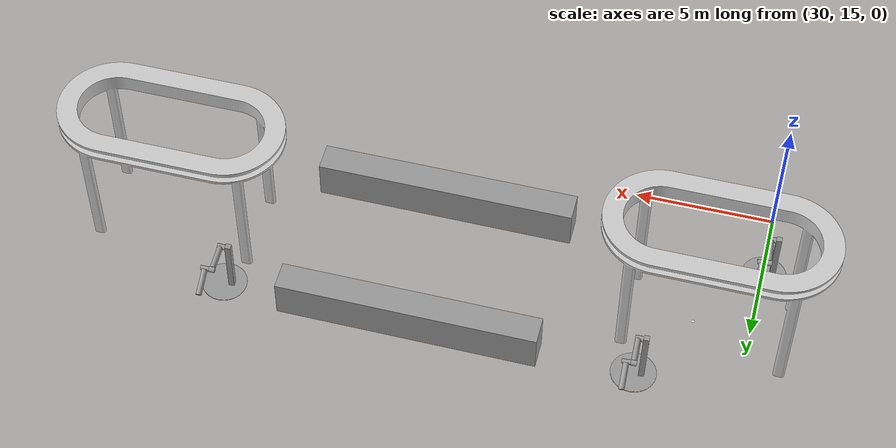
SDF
<sdf version="1.7">
 <world name="factory_ground">
  <model name="marker_2">
   <link name="marker">
    <visual name="visual">
     <geometry><box><size>0.1 0.1 1e-05</size></box></geometry>
     <material>
      <script>
       <uri>model://marker_2/materials/scripts</uri>
       <uri>model://marker_2/materials/textures</uri>
       <name>marker_material2</name>
      </script>
      <ambient>1 1 1 1</ambient>
      <diffuse>1 1 1 1</diffuse>
      <specular>0 0 0 1</specular>
      <emissive>1 1 1 0</emissive>
     </material>
    </visual>
    <collision name="collision"><geometry><box><size>0.1 0.1 1e-05</size></box></geometry></collision>
   </link>
   <link name="marker_pad">
    <pose relative_to="marker">0 0 -1e-05 0 -0 0</pose>
    <visual name="visual">
     <geometry><box><size>0.1 0.1 1e-05</size></box></geometry>
     <material>
      <lighting>1</lighting>
      <script><uri>file://media/materials/scripts/gazebo.material</uri><name>Gazebo/White</name></script>
      <ambient>0.3 0.3 0.3 1</ambient>
      <diffuse>0.7 0.7 0.7 1</diffuse>
      <specular>0.01 0.01 0.01 1</specular>
      <emissive>1 1 1 0</emissive>
     </material>
    </visual>
    <collision name="collision"><geometry><box><size>0.1 0.1 1e-05</size></box></geometry></collision>
   </link>
   <joint name="marker_JOINT_marker_pad" type="revolute">
    <parent>marker</parent>
    <child>marker_pad</child>
    <axis>
     <xyz>0 0 1</xyz>
     <limit><upper>0</upper><lower>0</lower></limit>
     <dynamics><spring_reference>0</spring_reference><spring_stiffness>0</spring_stiffness></dynamics>
    </axis>
   </joint>
   <static>1</static>
   <pose>32 20 0.046333 0 -0 0</pose>
  </model>
  <model name="cell_clone_0">
   <static>1</static>
   <pose>29.5313 18 0 0 -0 0</pose>
   <link name="link">
    <inertial>
     <mass>1</mass>
     <inertia><ixx>0.01</ixx><ixy>0</ixy><ixz>0</ixz><iyy>0.01</iyy><iyz>0</iyz><izz>0.01</izz></inertia>
    </inertial>
    <visual name="visual"><geometry><mesh><uri>model://cell/meshes/cell.dae</uri></mesh></geometry></visual>
    <collision name="collision">
     <geometry><mesh><uri>model://cell/meshes/cell.dae</uri><scale>1 1 1</scale></mesh></geometry>
     <surface>
      <friction><ode><mu>1</mu><mu2>1</mu2><fdir1>0 0 0</fdir1><slip1>0</slip1><slip2>0</slip2></ode></friction>
      <bounce><restitution_coefficient>0</restitution_coefficient><threshold>1e+06</threshold></bounce>
      <contact>
       <ode>
        <soft_cfm>0</soft_cfm>
        <soft_erp>0.2</soft_erp>
        <kp>1e+13</kp>
        <kd>1</kd>
        <max_vel>0.01</max_vel>
        <min_depth>0.001</min_depth>
       </ode>
      </contact>
     </surface>
    </collision>
   </link>
   <static>1</static>
  </model>
  <model name="cell_clone_0_clone">
   <static>1</static>
   <pose>48.5627 18 0 0 -0 0</pose>
   <link name="link">
    <inertial>
     <mass>1</mass>
     <inertia><ixx>0.01</ixx><ixy>0</ixy><ixz>0</ixz><iyy>0.01</iyy><iyz>0</iyz><izz>0.01</izz></inertia>
    </inertial>
    <visual name="visual"><geometry><mesh><uri>model://cell/meshes/cell.dae</uri></mesh></geometry></visual>
    <collision name="collision">
     <geometry><mesh><uri>model://cell/meshes/cell.dae</uri><scale>1 1 1</scale></mesh></geometry>
     <surface>
      <friction><ode><mu>1</mu><mu2>1</mu2><fdir1>0 0 0</fdir1><slip1>0</slip1><slip2>0</slip2></ode></friction>
      <bounce><restitution_coefficient>0</restitution_coefficient><threshold>1e+06</threshold></bounce>
      <contact>
       <ode>
        <soft_cfm>0</soft_cfm>
        <soft_erp>0.2</soft_erp>
        <kp>1e+13</kp>
        <kd>1</kd>
        <max_vel>0.01</max_vel>
        <min_depth>0.001</min_depth>
       </ode>
      </contact>
     </surface>
    </collision>
   </link>
   <static>1</static>
  </model>
  <model name="double_pendulum_with_base_clone_9">
   <link name="base">
    <inertial>
     <mass>100</mass>
     <inertia><ixx>1</ixx><ixy>0</ixy><ixz>0</ixz><iyy>1</iyy><iyz>0</iyz><izz>1</izz></inertia>
    </inertial>
    <visual name="vis_plate_on_ground">
     <pose>0 0 0.01 0 -0 0</pose>
     <geometry><cylinder><radius>0.8</radius><length>0.02</length></cylinder></geometry>
     <material>
      <script><uri>file://media/materials/scripts/gazebo.material</uri><name>Gazebo/Grey</name></script>
     </material>
    </visual>
    <visual name="vis_pole">
     <pose>-0.275 0 1.1 0 -0 0</pose>
     <geometry><box><size>0.2 0.2 2.2</size></box></geometry>
     <material>
      <script><uri>file://media/materials/scripts/gazebo.material</uri><name>Gazebo/Grey</name></script>
     </material>
    </visual>
    <collision name="col_plate_on_ground">
     <pose>0 0 0.01 0 -0 0</pose>
     <geometry><cylinder><radius>0.8</radius><length>0.02</length></cylinder></geometry>
    </collision>
    <collision name="col_pole">
     <pose>-0.275 0 1.1 0 -0 0</pose>
     <geometry><box><size>0.2 0.2 2.2</size></box></geometry>
    </collision>
   </link>
   <link name="upper_link">
    <pose>0 0 2.1 -1.5708 0 0</pose>
    <inertial>
     <pose>0 0 0.5 0 -0 0</pose>
     <inertia><ixx>1</ixx><ixy>0</ixy><ixz>0</ixz><iyy>1</iyy><iyz>0</iyz><izz>1</izz></inertia>
     <mass>1</mass>
    </inertial>
    <visual name="vis_upper_joint">
     <pose>-0.05 0 0 3.14159 1.57079 3.14159</pose>
     <geometry><cylinder><radius>0.1</radius><length>0.3</length></cylinder></geometry>
     <material>
      <script><uri>file://media/materials/scripts/gazebo.material</uri><name>Gazebo/Grey</name></script>
     </material>
    </visual>
    <visual name="vis_lower_joint">
     <pose>0 0 1 3.14159 1.57079 3.14159</pose>
     <geometry><cylinder><radius>0.1</radius><length>0.2</length></cylinder></geometry>
     <material>
      <script><uri>file://media/materials/scripts/gazebo.material</uri><name>Gazebo/Grey</name></script>
     </material>
    </visual>
    <visual name="vis_cylinder">
     <pose>0 0 0.5 0 -0 0</pose>
     <geometry><cylinder><radius>0.1</radius><length>0.9</length></cylinder></geometry>
     <material>
      <script><uri>file://media/materials/scripts/gazebo.material</uri><name>Gazebo/Grey</name></script>
     </material>
    </visual>
    <collision name="col_upper_joint">
     <pose>-0.05 0 0 3.14159 1.57079 3.14159</pose>
     <geometry><cylinder><radius>0.1</radius><length>0.3</length></cylinder></geometry>
    </collision>
    <collision name="col_lower_joint">
     <pose>0 0 1 3.14159 1.57079 3.14159</pose>
     <geometry><cylinder><radius>0.1</radius><length>0.2</length></cylinder></geometry>
    </collision>
    <collision name="col_cylinder">
     <pose>0 0 0.5 0 -0 0</pose>
     <geometry><cylinder><radius>0.1</radius><length>0.9</length></cylinder></geometry>
    </collision>
   </link>
   <link name="lower_link">
    <pose>0.25 1 2.1 -2 0 0</pose>
    <inertial>
     <pose>0 0 0.5 0 -0 0</pose>
     <inertia><ixx>1</ixx><ixy>0</ixy><ixz>0</ixz><iyy>1</iyy><iyz>0</iyz><izz>1</izz></inertia>
     <mass>1</mass>
    </inertial>
    <visual name="vis_lower_joint">
     <pose>0 0 0 3.14159 1.57079 3.14159</pose>
     <geometry><cylinder><radius>0.08</radius><length>0.3</length></cylinder></geometry>
     <material>
      <script><uri>file://media/materials/scripts/gazebo.material</uri><name>Gazebo/Grey</name></script>
     </material>
    </visual>
    <visual name="vis_cylinder">
     <pose>0 0 0.5 0 -0 0</pose>
     <geometry><cylinder><radius>0.1</radius><length>0.9</length></cylinder></geometry>
     <material>
      <script><uri>file://media/materials/scripts/gazebo.material</uri><name>Gazebo/Grey</name></script>
     </material>
    </visual>
    <collision name="col_lower_joint">
     <pose>0 0 0 3.14159 1.57079 3.14159</pose>
     <geometry><cylinder><radius>0.08</radius><length>0.3</length></cylinder></geometry>
    </collision>
    <collision name="col_cylinder">
     <pose>0 0 0.5 0 -0 0</pose>
     <geometry><cylinder><radius>0.1</radius><length>0.9</length></cylinder></geometry>
    </collision>
   </link>
   <joint name="upper_joint" type="revolute">
    <parent>base</parent>
    <child>upper_link</child>
    <axis>
     <xyz>1 0 0</xyz>
     <limit><lower>-1e+16</lower><upper>1e+16</upper></limit>
     <dynamics><spring_reference>0</spring_reference><spring_stiffness>0</spring_stiffness></dynamics>
    </axis>
   </joint>
   <joint name="lower_joint" type="revolute">
    <parent>upper_link</parent>
    <child>lower_link</child>
    <axis>
     <xyz>1 0 0</xyz>
     <limit><lower>-1e+16</lower><upper>1e+16</upper></limit>
     <dynamics><spring_reference>0</spring_reference><spring_stiffness>0</spring_stiffness></dynamics>
    </axis>
   </joint>
   <pose>48.2877 22.4731 0.023834 0.000269 -0.010005 0.025501</pose>
  </model>
  <model name="double_pendulum_with_base_clone_11">
   <link name="base">
    <inertial>
     <mass>100</mass>
     <inertia><ixx>1</ixx><ixy>0</ixy><ixz>0</ixz><iyy>1</iyy><iyz>0</iyz><izz>1</izz></inertia>
    </inertial>
    <visual name="vis_plate_on_ground">
     <pose>0 0 0.01 0 -0 0</pose>
     <geometry><cylinder><radius>0.8</radius><length>0.02</length></cylinder></geometry>
     <material>
      <script><uri>file://media/materials/scripts/gazebo.material</uri><name>Gazebo/Grey</name></script>
     </material>
    </visual>
    <visual name="vis_pole">
     <pose>-0.275 0 1.1 0 -0 0</pose>
     <geometry><box><size>0.2 0.2 2.2</size></box></geometry>
     <material>
      <script><uri>file://media/materials/scripts/gazebo.material</uri><name>Gazebo/Grey</name></script>
     </material>
    </visual>
    <collision name="col_plate_on_ground">
     <pose>0 0 0.01 0 -0 0</pose>
     <geometry><cylinder><radius>0.8</radius><length>0.02</length></cylinder></geometry>
    </collision>
    <collision name="col_pole">
     <pose>-0.275 0 1.1 0 -0 0</pose>
     <geometry><box><size>0.2 0.2 2.2</size></box></geometry>
    </collision>
   </link>
   <link name="upper_link">
    <pose>0 0 2.1 -1.5708 0 0</pose>
    <inertial>
     <pose>0 0 0.5 0 -0 0</pose>
     <inertia><ixx>1</ixx><ixy>0</ixy><ixz>0</ixz><iyy>1</iyy><iyz>0</iyz><izz>1</izz></inertia>
     <mass>1</mass>
    </inertial>
    <visual name="vis_upper_joint">
     <pose>-0.05 0 0 3.14159 1.57079 3.14159</pose>
     <geometry><cylinder><radius>0.1</radius><length>0.3</length></cylinder></geometry>
     <material>
      <script><uri>file://media/materials/scripts/gazebo.material</uri><name>Gazebo/Grey</name></script>
     </material>
    </visual>
    <visual name="vis_lower_joint">
     <pose>0 0 1 3.14159 1.57079 3.14159</pose>
     <geometry><cylinder><radius>0.1</radius><length>0.2</length></cylinder></geometry>
     <material>
      <script><uri>file://media/materials/scripts/gazebo.material</uri><name>Gazebo/Grey</name></script>
     </material>
    </visual>
    <visual name="vis_cylinder">
     <pose>0 0 0.5 0 -0 0</pose>
     <geometry><cylinder><radius>0.1</radius><length>0.9</length></cylinder></geometry>
     <material>
      <script><uri>file://media/materials/scripts/gazebo.material</uri><name>Gazebo/Grey</name></script>
     </material>
    </visual>
    <collision name="col_upper_joint">
     <pose>-0.05 0 0 3.14159 1.57079 3.14159</pose>
     <geometry><cylinder><radius>0.1</radius><length>0.3</length></cylinder></geometry>
    </collision>
    <collision name="col_lower_joint">
     <pose>0 0 1 3.14159 1.57079 3.14159</pose>
     <geometry><cylinder><radius>0.1</radius><length>0.2</length></cylinder></geometry>
    </collision>
    <collision name="col_cylinder">
     <pose>0 0 0.5 0 -0 0</pose>
     <geometry><cylinder><radius>0.1</radius><length>0.9</length></cylinder></geometry>
    </collision>
   </link>
   <link name="lower_link">
    <pose>0.25 1 2.1 -2 0 0</pose>
    <inertial>
     <pose>0 0 0.5 0 -0 0</pose>
     <inertia><ixx>1</ixx><ixy>0</ixy><ixz>0</ixz><iyy>1</iyy><iyz>0</iyz><izz>1</izz></inertia>
     <mass>1</mass>
    </inertial>
    <visual name="vis_lower_joint">
     <pose>0 0 0 3.14159 1.57079 3.14159</pose>
     <geometry><cylinder><radius>0.08</radius><length>0.3</length></cylinder></geometry>
     <material>
      <script><uri>file://media/materials/scripts/gazebo.material</uri><name>Gazebo/Grey</name></script>
     </material>
    </visual>
    <visual name="vis_cylinder">
     <pose>0 0 0.5 0 -0 0</pose>
     <geometry><cylinder><radius>0.1</radius><length>0.9</length></cylinder></geometry>
     <material>
      <script><uri>file://media/materials/scripts/gazebo.material</uri><name>Gazebo/Grey</name></script>
     </material>
    </visual>
    <collision name="col_lower_joint">
     <pose>0 0 0 3.14159 1.57079 3.14159</pose>
     <geometry><cylinder><radius>0.08</radius><length>0.3</length></cylinder></geometry>
    </collision>
    <collision name="col_cylinder">
     <pose>0 0 0.5 0 -0 0</pose>
     <geometry><cylinder><radius>0.1</radius><length>0.9</length></cylinder></geometry>
    </collision>
   </link>
   <joint name="upper_joint" type="revolute">
    <parent>base</parent>
    <child>upper_link</child>
    <axis>
     <xyz>1 0 0</xyz>
     <limit><lower>-1e+16</lower><upper>1e+16</upper></limit>
     <dynamics><spring_reference>0</spring_reference><spring_stiffness>0</spring_stiffness></dynamics>
    </axis>
   </joint>
   <joint name="lower_joint" type="revolute">
    <parent>upper_link</parent>
    <child>lower_link</child>
    <axis>
     <xyz>1 0 0</xyz>
     <limit><lower>-1e+16</lower><upper>1e+16</upper></limit>
     <dynamics><spring_reference>0</spring_reference><spring_stiffness>0</spring_stiffness></dynamics>
    </axis>
   </joint>
   <pose>33.5925 22.5857 0.021714 0.000136 -0.008866 0.04367</pose>
  </model>
  <model name="double_pendulum_with_base_clone_12">
   <link name="base">
    <inertial>
     <mass>100</mass>
     <inertia><ixx>1</ixx><ixy>0</ixy><ixz>0</ixz><iyy>1</iyy><iyz>0</iyz><izz>1</izz></inertia>
    </inertial>
    <visual name="vis_plate_on_ground">
     <pose>0 0 0.01 0 -0 0</pose>
     <geometry><cylinder><radius>0.8</radius><length>0.02</length></cylinder></geometry>
     <material>
      <script><uri>file://media/materials/scripts/gazebo.material</uri><name>Gazebo/Grey</name></script>
     </material>
    </visual>
    <visual name="vis_pole">
     <pose>-0.275 0 1.1 0 -0 0</pose>
     <geometry><box><size>0.2 0.2 2.2</size></box></geometry>
     <material>
      <script><uri>file://media/materials/scripts/gazebo.material</uri><name>Gazebo/Grey</name></script>
     </material>
    </visual>
    <collision name="col_plate_on_ground">
     <pose>0 0 0.01 0 -0 0</pose>
     <geometry><cylinder><radius>0.8</radius><length>0.02</length></cylinder></geometry>
    </collision>
    <collision name="col_pole">
     <pose>-0.275 0 1.1 0 -0 0</pose>
     <geometry><box><size>0.2 0.2 2.2</size></box></geometry>
    </collision>
   </link>
   <link name="upper_link">
    <pose>0 0 2.1 -1.5708 0 0</pose>
    <inertial>
     <pose>0 0 0.5 0 -0 0</pose>
     <inertia><ixx>1</ixx><ixy>0</ixy><ixz>0</ixz><iyy>1</iyy><iyz>0</iyz><izz>1</izz></inertia>
     <mass>1</mass>
    </inertial>
    <visual name="vis_upper_joint">
     <pose>-0.05 0 0 3.14159 1.57079 3.14159</pose>
     <geometry><cylinder><radius>0.1</radius><length>0.3</length></cylinder></geometry>
     <material>
      <script><uri>file://media/materials/scripts/gazebo.material</uri><name>Gazebo/Grey</name></script>
     </material>
    </visual>
    <visual name="vis_lower_joint">
     <pose>0 0 1 3.14159 1.57079 3.14159</pose>
     <geometry><cylinder><radius>0.1</radius><length>0.2</length></cylinder></geometry>
     <material>
      <script><uri>file://media/materials/scripts/gazebo.material</uri><name>Gazebo/Grey</name></script>
     </material>
    </visual>
    <visual name="vis_cylinder">
     <pose>0 0 0.5 0 -0 0</pose>
     <geometry><cylinder><radius>0.1</radius><length>0.9</length></cylinder></geometry>
     <material>
      <script><uri>file://media/materials/scripts/gazebo.material</uri><name>Gazebo/Grey</name></script>
     </material>
    </visual>
    <collision name="col_upper_joint">
     <pose>-0.05 0 0 3.14159 1.57079 3.14159</pose>
     <geometry><cylinder><radius>0.1</radius><length>0.3</length></cylinder></geometry>
    </collision>
    <collision name="col_lower_joint">
     <pose>0 0 1 3.14159 1.57079 3.14159</pose>
     <geometry><cylinder><radius>0.1</radius><length>0.2</length></cylinder></geometry>
    </collision>
    <collision name="col_cylinder">
     <pose>0 0 0.5 0 -0 0</pose>
     <geometry><cylinder><radius>0.1</radius><length>0.9</length></cylinder></geometry>
    </collision>
   </link>
   <link name="lower_link">
    <pose>0.25 1 2.1 -2 0 0</pose>
    <inertial>
     <pose>0 0 0.5 0 -0 0</pose>
     <inertia><ixx>1</ixx><ixy>0</ixy><ixz>0</ixz><iyy>1</iyy><iyz>0</iyz><izz>1</izz></inertia>
     <mass>1</mass>
    </inertial>
    <visual name="vis_lower_joint">
     <pose>0 0 0 3.14159 1.57079 3.14159</pose>
     <geometry><cylinder><radius>0.08</radius><length>0.3</length></cylinder></geometry>
     <material>
      <script><uri>file://media/materials/scripts/gazebo.material</uri><name>Gazebo/Grey</name></script>
     </material>
    </visual>
    <visual name="vis_cylinder">
     <pose>0 0 0.5 0 -0 0</pose>
     <geometry><cylinder><radius>0.1</radius><length>0.9</length></cylinder></geometry>
     <material>
      <script><uri>file://media/materials/scripts/gazebo.material</uri><name>Gazebo/Grey</name></script>
     </material>
    </visual>
    <collision name="col_lower_joint">
     <pose>0 0 0 3.14159 1.57079 3.14159</pose>
     <geometry><cylinder><radius>0.08</radius><length>0.3</length></cylinder></geometry>
    </collision>
    <collision name="col_cylinder">
     <pose>0 0 0.5 0 -0 0</pose>
     <geometry><cylinder><radius>0.1</radius><length>0.9</length></cylinder></geometry>
    </collision>
   </link>
   <joint name="upper_joint" type="revolute">
    <parent>base</parent>
    <child>upper_link</child>
    <axis>
     <xyz>1 0 0</xyz>
     <limit><lower>-1e+16</lower><upper>1e+16</upper></limit>
     <dynamics><spring_reference>0</spring_reference><spring_stiffness>0</spring_stiffness></dynamics>
    </axis>
   </joint>
   <joint name="lower_joint" type="revolute">
    <parent>upper_link</parent>
    <child>lower_link</child>
    <axis>
     <xyz>1 0 0</xyz>
     <limit><lower>-1e+16</lower><upper>1e+16</upper></limit>
     <dynamics><spring_reference>0</spring_reference><spring_stiffness>0</spring_stiffness></dynamics>
    </axis>
   </joint>
   <pose>29.9337 17.4117 0.011678 0.000516 -0.000154 0.087352</pose>
  </model>
  <model name="Untitled_machine">
   <link name="link_0">
    <inertial>
     <mass>13.6418</mass>
     <inertia><ixx>3.61739</ixx><ixy>0</ixy><ixz>0</ixz><iyy>99.4367</iyy><iyz>0</iyz><izz>98.093</izz></inertia>
    </inertial>
    <pose>0.017385 2.65414 -0.076436 0 -0 0</pose>
    <visual name="visual">
     <geometry><box><size>9.23513 1 1.47717</size></box></geometry>
     <material>
      <lighting>1</lighting>
      <script><uri>file://media/materials/scripts/gazebo.material</uri><name>Gazebo/Grey</name></script>
      <shader type="pixel"/>
     </material>
    </visual>
    <collision name="collision">
     <geometry><box><size>9.23513 1 1.47717</size></box></geometry>
     <surface>
      <friction>
       <ode><mu>1</mu><mu2>1</mu2><fdir1>0 0 0</fdir1><slip1>0</slip1><slip2>0</slip2></ode>
       <torsional>
        <coefficient>1</coefficient>
        <patch_radius>0</patch_radius>
        <surface_radius>0</surface_radius>
        <use_patch_radius>1</use_patch_radius>
        <ode><slip>0</slip></ode>
       </torsional>
      </friction>
      <bounce><restitution_coefficient>0</restitution_coefficient><threshold>1e+06</threshold></bounce>
      <contact>
       <collide_without_contact>0</collide_without_contact>
       <collide_without_contact_bitmask>1</collide_without_contact_bitmask>
       <collide_bitmask>1</collide_bitmask>
       <ode>
        <soft_cfm>0</soft_cfm>
        <soft_erp>0.2</soft_erp>
        <kp>1e+13</kp>
        <kd>1</kd>
        <max_vel>0.01</max_vel>
        <min_depth>0</min_depth>
       </ode>
       <bullet>
        <split_impulse>1</split_impulse>
        <split_impulse_penetration_threshold>-0.01</split_impulse_penetration_threshold>
        <soft_cfm>0</soft_cfm>
        <soft_erp>0.2</soft_erp>
        <kp>1e+13</kp>
        <kd>1</kd>
       </bullet>
      </contact>
     </surface>
    </collision>
   </link>
   <link name="link_0_clone">
    <inertial>
     <mass>13.6418</mass>
     <inertia><ixx>3.61739</ixx><ixy>0</ixy><ixz>0</ixz><iyy>99.4367</iyy><iyz>0</iyz><izz>98.093</izz></inertia>
    </inertial>
    <pose>-0.017302 -2.65407 0.076436 0 -0 0</pose>
    <visual name="visual">
     <geometry><box><size>9.23513 1 1.47717</size></box></geometry>
     <material>
      <lighting>1</lighting>
      <script><uri>file://media/materials/scripts/gazebo.material</uri><name>Gazebo/Grey</name></script>
      <shader type="pixel"/>
     </material>
    </visual>
    <collision name="collision">
     <geometry><box><size>9.23513 1 1.47717</size></box></geometry>
     <surface>
      <friction>
       <ode><mu>1</mu><mu2>1</mu2><fdir1>0 0 0</fdir1><slip1>0</slip1><slip2>0</slip2></ode>
       <torsional>
        <coefficient>1</coefficient>
        <patch_radius>0</patch_radius>
        <surface_radius>0</surface_radius>
        <use_patch_radius>1</use_patch_radius>
        <ode><slip>0</slip></ode>
       </torsional>
      </friction>
      <bounce><restitution_coefficient>0</restitution_coefficient><threshold>1e+06</threshold></bounce>
      <contact>
       <collide_without_contact>0</collide_without_contact>
       <collide_without_contact_bitmask>1</collide_without_contact_bitmask>
       <collide_bitmask>1</collide_bitmask>
       <ode>
        <soft_cfm>0</soft_cfm>
        <soft_erp>0.2</soft_erp>
        <kp>1e+13</kp>
        <kd>1</kd>
        <max_vel>0.01</max_vel>
        <min_depth>0</min_depth>
       </ode>
       <bullet>
        <split_impulse>1</split_impulse>
        <split_impulse_penetration_threshold>-0.01</split_impulse_penetration_threshold>
        <soft_cfm>0</soft_cfm>
        <soft_erp>0.2</soft_erp>
        <kp>1e+13</kp>
        <kd>1</kd>
       </bullet>
      </contact>
     </surface>
    </collision>
   </link>
   <static>0</static>
   <pose>41.4933 20.0821 0.899557 0 -0 0</pose>
  </model>
 </world>
</sdf>
